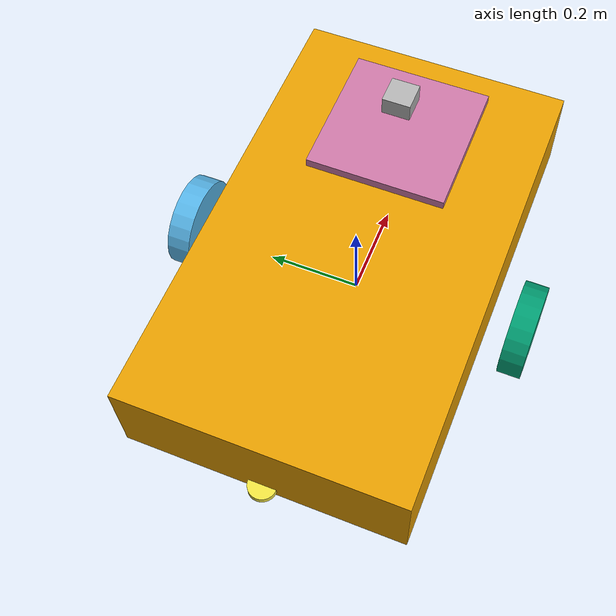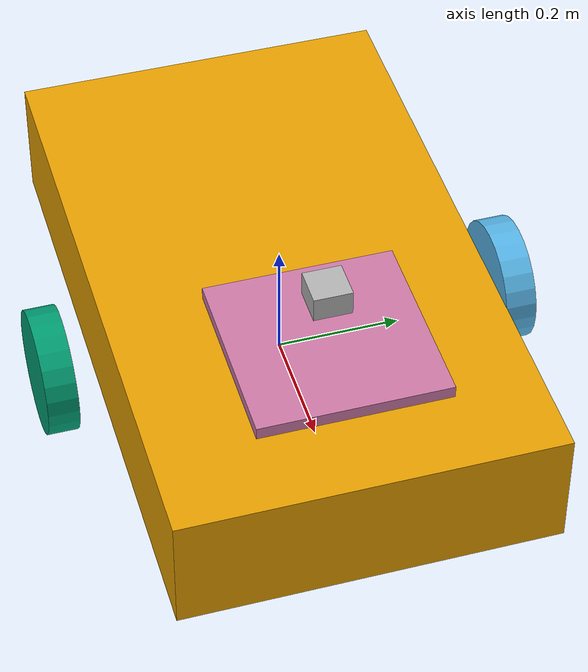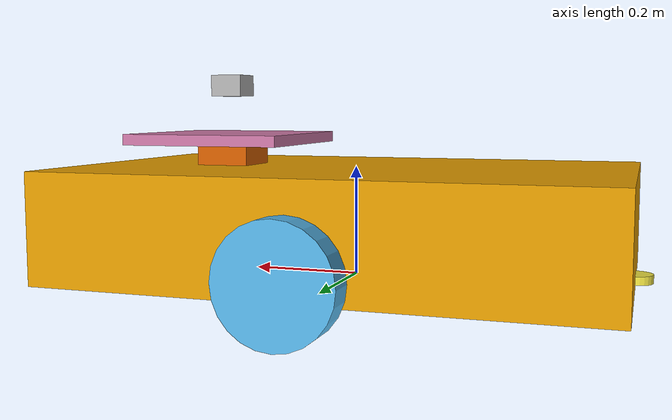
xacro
<?xml version="1.0"?>
<robot xmlns:xacro="http://www.ros.org/wiki/xacro" name="amr2">
  <xacro:include filename="$(find robots_description)/urdf/amr_base_common.xacro"/>

  <!-- customize AMR-2 -->
  <xacro:property name="wheel_radius" value="0.1"/>
  <xacro:property name="wheel_width"  value="0.05"/>
  <xacro:property name="wheel_base"   value=".75"/>
  <xacro:property name="chassis_length" value="1.0"/>
  <xacro:property name="chassis_width"  value="0.6"/>
  <xacro:property name="chassis_height" value="0.2"/>
  <xacro:property name="mass_chassis" value="200.0"/>

  <!-- base -->
  <link name="base_link">
    <visual>
      <origin xyz="0 0 ${chassis_height/2}" rpy="0 0 0"/>
      <geometry><box size="${chassis_length} ${chassis_width} ${chassis_height}"/></geometry>
    </visual>
    <collision>
      <origin xyz="0 0 ${chassis_height/2}" rpy="0 0 0"/>
      <geometry><box size="${chassis_length} ${chassis_width} ${chassis_height}"/></geometry>
    </collision>
    <xacro:inertial_box m="${mass_chassis}" lx="${chassis_length}" ly="${chassis_width}" lz="${chassis_height}"/>
  </link>

  <!-- wheels -->
  <xacro:wheel name="wheel_left"  radius="${wheel_radius}" width="${wheel_width}" mass="1.2"/>
  <xacro:wheel name="wheel_right" radius="${wheel_radius}" width="${wheel_width}" mass="1.2"/>

  <joint name="wheel_left_joint" type="continuous">
    <parent link="base_link"/>
    <child link="wheel_left"/>
    <origin xyz="0 ${wheel_base/2} ${chassis_height/4}" rpy="0 0 0"/>
    <axis xyz="0 1 0"/>
  </joint>

  <joint name="wheel_right_joint" type="continuous">
    <parent link="base_link"/>
    <child link="wheel_right"/>
    <origin xyz="0 ${-wheel_base/2} ${chassis_height/4}" rpy="0 0 0"/>
    <axis xyz="0 1 0"/>
  </joint>

  <!-- caster -->
  <xacro:caster name="caster_link" radius="${caster_radius}" mass="0.3"/>
  <joint name="caster_joint" type="fixed">
    <parent link="base_link"/>
    <child link="caster_link"/>
    <origin xyz="${-chassis_length/2} 0 ${0.02}" rpy="0 0 0"/>
  </joint>

  <!-- higher precision IMU -->
  <link name="imu_link">
    <visual><geometry><sphere radius="0.02"/></geometry></visual>
    <xacro:inertial_box m="0.04" lx="0.03" ly="0.03" lz="0.02"/>
  </link>
  <joint name="imu_joint" type="fixed">
    <parent link="base_link"/>
    <child link="imu_link"/>
    <origin xyz="0 0 ${chassis_height/2 + 0.04}" rpy="0 0 0"/>
  </joint>

  <!-- mast (for lift) -->
  <link name="mast_link">
    <visual><geometry><box size="0.10 0.10 0.30"/></geometry></visual>
    <xacro:inertial_box m="1.0" lx="0.10" ly="0.10" lz="0.30"/>
  </link>
  <joint name="mast_fixed" type="fixed">
    <parent link="base_link"/>
    <child link="mast_link"/>
    <origin xyz="${chassis_length/4} 0 ${chassis_height/2}" rpy="0 0 0"/>
  </joint>

  <!-- lift (prismatic) -->
  <link name="lift_platform">
    <visual><geometry><box size="0.30 0.30 0.02"/></geometry></visual>
    <xacro:inertial_box m="2.0" lx="0.30" ly="0.30" lz="0.02"/>
  </link>

  <joint name="lift_joint" type="prismatic">
    <parent link="mast_link"/>
    <child link="lift_platform"/>
    <origin xyz="0 0 0.15" rpy="0 0 0"/>
    <axis xyz="0 0 1"/>
    <limit lower="0.0" upper="0.60" effort="100.0" velocity="0.2"/>
  </joint>

  <!-- depth camera link on top of lift -->
  <link name="depth_camera_link">
    <visual><geometry><box size="0.06 0.06 0.04"/></geometry></visual>
    <xacro:inertial_box m="0.2" lx="0.06" ly="0.06" lz="0.04"/>
  </link>

  <joint name="camera_mount_joint" type="fixed">
    <parent link="lift_platform"/>
    <child link="depth_camera_link"/>
    <origin xyz="0 0 0.10" rpy="0 0 0"/>
  </joint>

  <!-- small lidar on chassis front -->
  <link name="lidar_link">
    <visual><geometry><cylinder radius="0.03" length="0.02"/></geometry></visual>
    <xacro:inertial_box m="0.05" lx="0.06" ly="0.06" lz="0.02"/>
  </link>
  <joint name="lidar_joint" type="fixed">
    <parent link="base_link"/>
    <child link="lidar_link"/>
    <origin xyz="${chassis_length/2 - 0.05} 0 ${chassis_height/2 + 0.05}" rpy="0 0 0"/>
  </joint>

  <gazebo reference="base_link"/>
</robot>

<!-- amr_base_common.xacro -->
<robot xmlns:xacro="http://www.ros.org/wiki/xacro" name="amr_common">

  <!-- Basic parameters you can override when including -->
  <xacro:property name="wheel_radius" value="0.08"/>
  <xacro:property name="wheel_width"  value="0.04"/>
  <xacro:property name="wheel_base"   value="0.40"/> <!-- distance between wheels -->
  <xacro:property name="chassis_length" value="0.55"/>
  <xacro:property name="chassis_width"  value="0.40"/>
  <xacro:property name="chassis_height" value="0.18"/>
  <xacro:property name="caster_radius" value="0.03"/>
  <xacro:property name="mass_chassis" value="12.0"/>

  <!-- inertial helper -->
  <xacro:macro name="inertial_box" params="m lx ly lz">
    <inertial>
      <origin xyz="0 0 0" rpy="0 0 0"/>
      <mass value="${m}"/>
      <!-- approximate inertia for box -->
      <inertia ixx="${(1.0/12.0)*m*(ly*ly + lz*lz)}"
               ixy="0.0" ixz="0.0"
               iyy="${(1.0/12.0)*m*(lx*lx + lz*lz)}"
               iyz="0.0"
               izz="${(1.0/12.0)*m*(lx*lx + ly*ly)}"/>
    </inertial>
  </xacro:macro>

  <!-- Wheel macro -->
  <xacro:macro name="wheel" params="name radius width mass">
    <link name="${name}">
      <visual>
        <origin xyz="0 0 0" rpy="1.57 0 0"/>
        <geometry>
          <cylinder radius="${radius}" length="${width}"/>
        </geometry>
      </visual>
      <collision>
        <origin xyz="0 0 0" rpy="1.57 0 0"/>
        <geometry>
          <cylinder radius="${radius}" length="${width}"/>
        </geometry>
      </collision>
      <xacro:inertial_box m="${mass}" lx="${radius*2}" ly="${radius*2}" lz="${width}"/>
    </link>
  </xacro:macro>

  <!-- Simple caster wheel -->
  <xacro:macro name="caster" params="name radius mass">
    <link name="${name}">
      <visual>
        <geometry>
          <cylinder radius="${radius}" length="${radius*0.5}"/>
        </geometry>
      </visual>
      <collision>
        <geometry>
          <cylinder radius="${radius}" length="${radius*0.5}"/>
        </geometry>
      </collision>
      <xacro:inertial_box m="${mass}" lx="${radius*2}" ly="${radius*2}" lz="${radius*0.5}"/>
    </link>
  </xacro:macro>

</robot>
